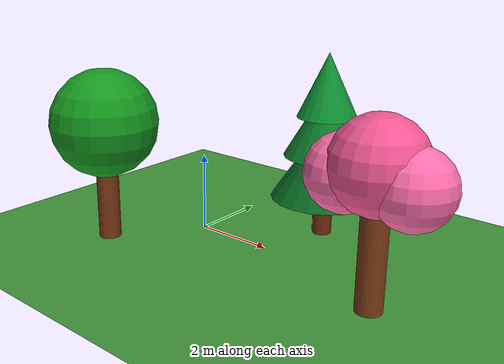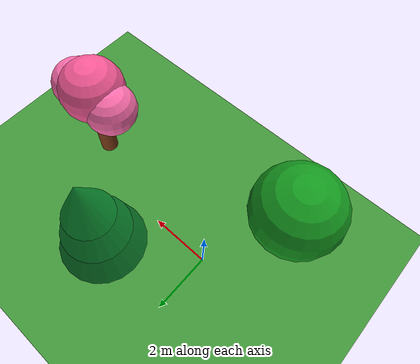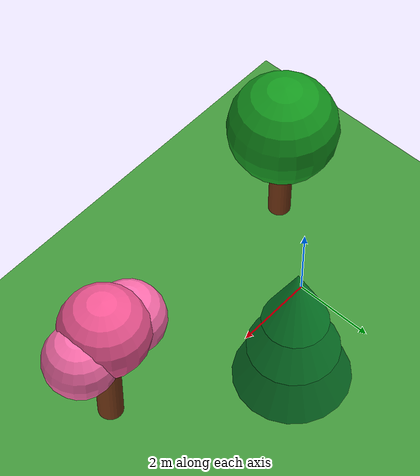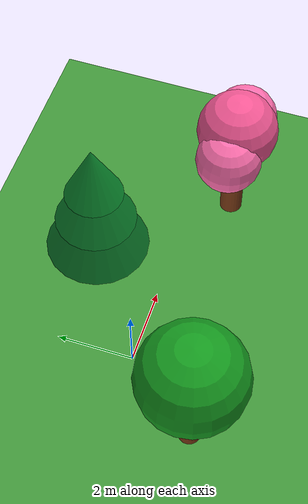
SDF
<?xml version="1.0" encoding="UTF-8"?>
<sdf version="1.9">
  <world name="three_tree_obstacles">
    <physics name="physics" type="ode">
      <max_step_size>0.004</max_step_size>
      <real_time_factor>1.0</real_time_factor>
      <real_time_update_rate>250</real_time_update_rate>
    </physics>
    <gravity>0 0 -9.8</gravity>
    <magnetic_field>6e-06 2.3e-05 -4.2e-05</magnetic_field>
    <atmosphere type="adiabatic"/>

    <scene>
      <grid>true</grid>
      <ambient>0.55 0.55 0.55 1</ambient>
      <background>0.55 0.76 0.95 1</background>
      <shadows>true</shadows>
    </scene>

    <model name="ground_plane">
      <static>true</static>
      <link name="ground_link">
        <collision name="ground_collision">
          <geometry>
            <plane>
              <normal>0 0 1</normal>
              <size>40 30</size>
            </plane>
          </geometry>
        </collision>
        <visual name="ground_visual">
          <geometry>
            <plane>
              <normal>0 0 1</normal>
              <size>40 30</size>
            </plane>
          </geometry>
          <material>
            <ambient>0.18 0.42 0.16 1</ambient>
            <diffuse>0.25 0.58 0.22 1</diffuse>
          </material>
        </visual>
      </link>
    </model>

    <!-- Obstacle 1: a broad-leaf tree. -->
    <model name="obstacle_1_round_tree">
      <static>true</static>
      <pose>-1.5 -2 0 0 0 0</pose>
      <link name="tree">
        <collision name="trunk_collision">
          <pose>0 0 1.25 0 0 0</pose>
          <geometry>
            <cylinder><radius>0.28</radius><length>2.5</length></cylinder>
          </geometry>
        </collision>
        <visual name="trunk_visual">
          <pose>0 0 1.25 0 0 0</pose>
          <geometry>
            <cylinder><radius>0.28</radius><length>2.5</length></cylinder>
          </geometry>
          <material>
            <ambient>0.30 0.12 0.04 1</ambient>
            <diffuse>0.48 0.22 0.08 1</diffuse>
          </material>
        </visual>
        <collision name="crown_collision">
          <pose>0 0 3.0 0 0 0</pose>
          <geometry><sphere><radius>1.35</radius></sphere></geometry>
        </collision>
        <visual name="crown_visual">
          <pose>0 0 3.0 0 0 0</pose>
          <geometry><sphere><radius>1.35</radius></sphere></geometry>
          <material>
            <ambient>0.04 0.30 0.06 1</ambient>
            <diffuse>0.08 0.60 0.12 1</diffuse>
          </material>
        </visual>
      </link>
    </model>

    <!-- Obstacle 2: a layered pine tree. -->
    <model name="obstacle_2_pine_tree">
      <static>true</static>
      <pose>2.5 1.8 0 0 0 0</pose>
      <link name="tree">
        <collision name="trunk_collision">
          <pose>0 0 1.0 0 0 0</pose>
          <geometry>
            <cylinder><radius>0.25</radius><length>2.0</length></cylinder>
          </geometry>
        </collision>
        <visual name="trunk_visual">
          <pose>0 0 1.0 0 0 0</pose>
          <geometry>
            <cylinder><radius>0.25</radius><length>2.0</length></cylinder>
          </geometry>
          <material>
            <ambient>0.28 0.10 0.03 1</ambient>
            <diffuse>0.45 0.18 0.05 1</diffuse>
          </material>
        </visual>
        <collision name="pine_lower_collision">
          <pose>0 0 2.0 0 0 0</pose>
          <geometry><cone><radius>1.35</radius><length>2.0</length></cone></geometry>
        </collision>
        <visual name="pine_lower_visual">
          <pose>0 0 2.0 0 0 0</pose>
          <geometry><cone><radius>1.35</radius><length>2.0</length></cone></geometry>
          <material>
            <ambient>0.02 0.22 0.08 1</ambient>
            <diffuse>0.03 0.43 0.14 1</diffuse>
          </material>
        </visual>
        <collision name="pine_middle_collision">
          <pose>0 0 3.0 0 0 0</pose>
          <geometry><cone><radius>1.05</radius><length>1.8</length></cone></geometry>
        </collision>
        <visual name="pine_middle_visual">
          <pose>0 0 3.0 0 0 0</pose>
          <geometry><cone><radius>1.05</radius><length>1.8</length></cone></geometry>
          <material>
            <ambient>0.02 0.26 0.09 1</ambient>
            <diffuse>0.04 0.50 0.17 1</diffuse>
          </material>
        </visual>
        <collision name="pine_top_collision">
          <pose>0 0 3.9 0 0 0</pose>
          <geometry><cone><radius>0.75</radius><length>1.6</length></cone></geometry>
        </collision>
        <visual name="pine_top_visual">
          <pose>0 0 3.9 0 0 0</pose>
          <geometry><cone><radius>0.75</radius><length>1.6</length></cone></geometry>
          <material>
            <ambient>0.02 0.30 0.10 1</ambient>
            <diffuse>0.05 0.58 0.20 1</diffuse>
          </material>
        </visual>
      </link>
    </model>

    <!-- Obstacle 3: a flowering tree with a clustered crown. -->
    <model name="obstacle_3_flowering_tree">
      <static>true</static>
      <pose>5.5 -1.0 0 0 0 0</pose>
      <link name="tree">
        <collision name="trunk_collision">
          <pose>0 0 1.35 0 0 0</pose>
          <geometry>
            <cylinder><radius>0.30</radius><length>2.7</length></cylinder>
          </geometry>
        </collision>
        <visual name="trunk_visual">
          <pose>0 0 1.35 0 0 0</pose>
          <geometry>
            <cylinder><radius>0.30</radius><length>2.7</length></cylinder>
          </geometry>
          <material>
            <ambient>0.32 0.13 0.05 1</ambient>
            <diffuse>0.50 0.24 0.09 1</diffuse>
          </material>
        </visual>
        <collision name="crown_center_collision">
          <pose>0 0 3.15 0 0 0</pose>
          <geometry><sphere><radius>1.05</radius></sphere></geometry>
        </collision>
        <visual name="crown_center_visual">
          <pose>0 0 3.15 0 0 0</pose>
          <geometry><sphere><radius>1.05</radius></sphere></geometry>
          <material>
            <ambient>0.65 0.16 0.32 1</ambient>
            <diffuse>0.95 0.34 0.58 1</diffuse>
          </material>
        </visual>
        <collision name="crown_left_collision">
          <pose>-0.75 0 2.85 0 0 0</pose>
          <geometry><sphere><radius>0.85</radius></sphere></geometry>
        </collision>
        <visual name="crown_left_visual">
          <pose>-0.75 0 2.85 0 0 0</pose>
          <geometry><sphere><radius>0.85</radius></sphere></geometry>
          <material>
            <ambient>0.72 0.22 0.40 1</ambient>
            <diffuse>1.00 0.43 0.68 1</diffuse>
          </material>
        </visual>
        <collision name="crown_right_collision">
          <pose>0.75 0 2.85 0 0 0</pose>
          <geometry><sphere><radius>0.85</radius></sphere></geometry>
        </collision>
        <visual name="crown_right_visual">
          <pose>0.75 0 2.85 0 0 0</pose>
          <geometry><sphere><radius>0.85</radius></sphere></geometry>
          <material>
            <ambient>0.72 0.22 0.40 1</ambient>
            <diffuse>1.00 0.43 0.68 1</diffuse>
          </material>
        </visual>
      </link>
    </model>

    <light name="sun" type="directional">
      <pose>0 0 10 0 0 0</pose>
      <cast_shadows>true</cast_shadows>
      <intensity>1.1</intensity>
      <direction>-0.4 0.2 -0.9</direction>
      <diffuse>0.95 0.92 0.85 1</diffuse>
      <specular>0.30 0.30 0.30 1</specular>
      <attenuation>
        <range>1000</range>
        <constant>0.9</constant>
        <linear>0.01</linear>
        <quadratic>0.001</quadratic>
      </attenuation>
    </light>

    <spherical_coordinates>
      <surface_model>EARTH_WGS84</surface_model>
      <world_frame_orientation>ENU</world_frame_orientation>
      <latitude_deg>47.397971057728974</latitude_deg>
      <longitude_deg>8.546163739800146</longitude_deg>
      <elevation>0</elevation>
    </spherical_coordinates>
  </world>
</sdf>
